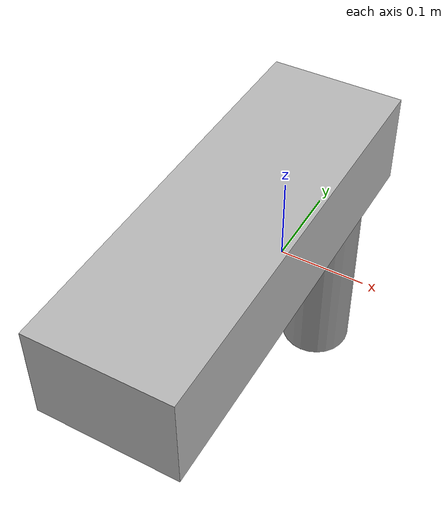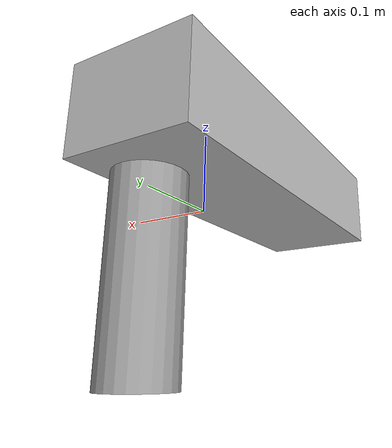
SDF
<?xml version='1.0'?>
<sdf version='1.7'>
  <model name='traffic_light_mini'>
    <link name='link_0'>
      <inertial>
        <mass>0.00189644</mass>
        <inertia>
          <ixx>1.09975e-05</ixx>
          <ixy>0</ixy>
          <ixz>0</ixz>
          <iyy>1.09975e-05</iyy>
          <iyz>0</iyz>
          <izz>1.776e-06</izz>
        </inertia>
        <pose>0 0 0 0 -0 0</pose>
      </inertial>
      <pose>0.01575 0.081011 -0.077493 0 -0 0</pose>
      <visual name='visual'>
        <pose>0 0 0 0 -0 0</pose>
        <geometry>
          <cylinder>
            <radius>0.0432779</radius>
            <length>0.252921</length>
          </cylinder>
        </geometry>
        <material>
          <lighting>1</lighting>
          <script>
            <uri>file://media/materials/scripts/gazebo.material</uri>
            <name>Gazebo/Grey</name>
          </script>
          <shader type='pixel'/>
          <emissive>0 0 0 1</emissive>
        </material>
        <transparency>0</transparency>
        <cast_shadows>1</cast_shadows>
      </visual>
      <collision name='collision'>
        <laser_retro>0</laser_retro>
        <max_contacts>10</max_contacts>
        <pose>0 0 0 0 -0 0</pose>
        <geometry>
          <cylinder>
            <radius>0.043278</radius>
            <length>0.252921</length>
          </cylinder>
        </geometry>

      </collision>
    </link>
    <link name='link_1'>
      <inertial>
        <mass>0.00850835</mass>
        <inertia>
          <ixx>0.000173361</ixx>
          <ixy>0</ixy>
          <ixz>0</ixz>
          <iyy>2.65878e-05</iyy>
          <iyz>0</iyz>
          <izz>0.000182362</izz>
        </inertia>
        <pose>0 0 0 0 -0 0</pose>
      </inertial>
      <pose>-0.01575 -0.08101 0.077493 0 -0 0</pose>
      <visual name='visual'>
        <pose>0 0 0 0 -0 0</pose>
        <geometry>
          <box>
            <size>0.15842 0.48177 0.111363</size>
          </box>
        </geometry>
        <plugin name='blink' filename='libBlinkVisualPlugin.so'>
            <color_a>1 0 0 1</color_a>
            <color_b>0 1 0 1</color_b>
            <period>30</period>
          </plugin>
      </visual>
      <collision name='collision'>
        <laser_retro>0</laser_retro>
        <max_contacts>10</max_contacts>
        <pose>0 0 0 0 -0 0</pose>
        <geometry>
          <box>
            <size>0.15842 0.48177 0.111363</size>
          </box>
        </geometry>
      </collision>
    </link>
    <joint name='link_0_JOINT_0' type='fixed'>
      <parent>link_0</parent>
      <child>link_1</child>
      <pose>0 0 0 0 -0 0</pose>
      <physics>
        <ode>
          <limit>
            <cfm>0</cfm>
            <erp>0.2</erp>
          </limit>
          <suspension>
            <cfm>0</cfm>
            <erp>0.2</erp>
          </suspension>
        </ode>
      </physics>
    </joint>
    <static>1</static>
    <allow_auto_disable>0</allow_auto_disable>
  </model>
</sdf>
